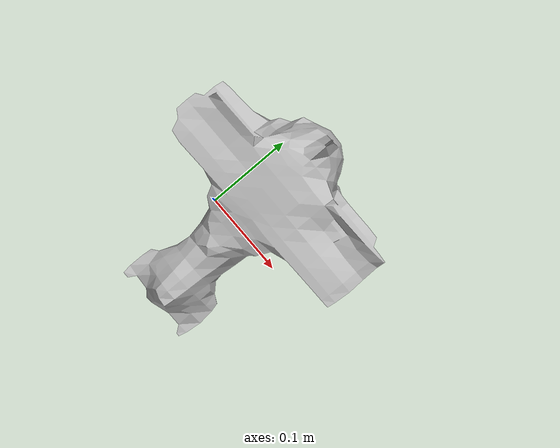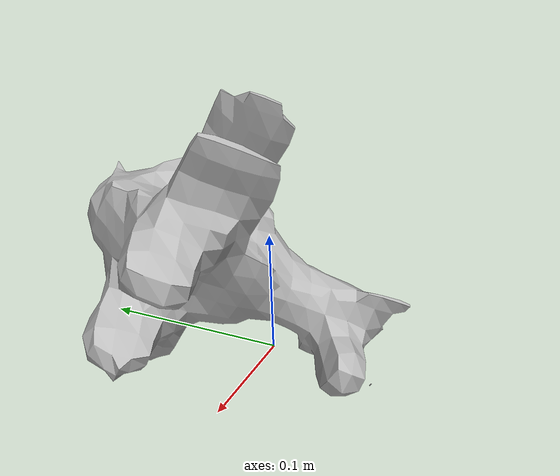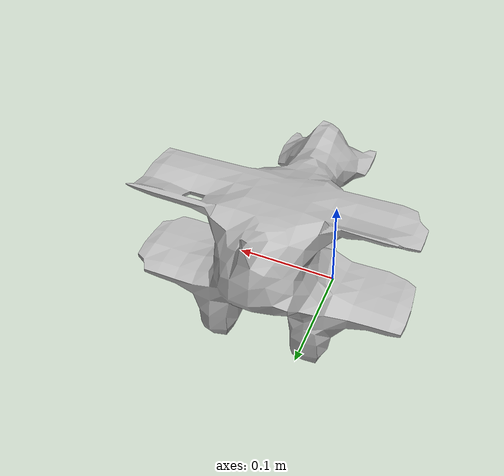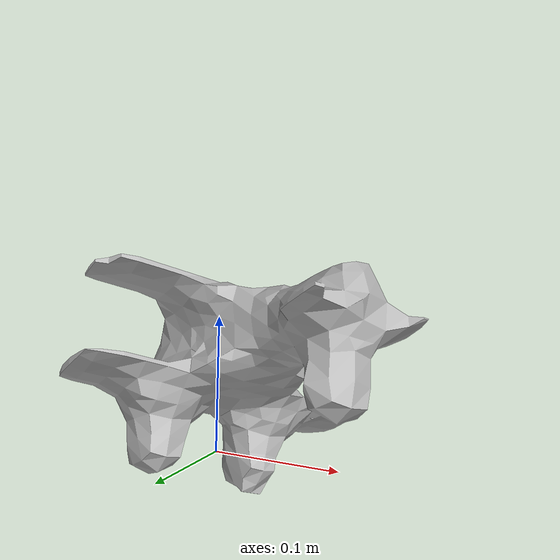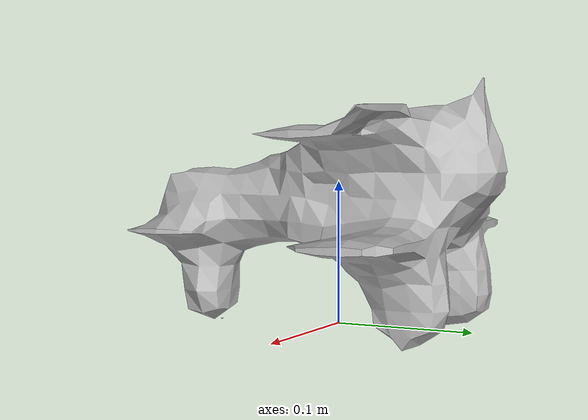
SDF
<?xml version='1.0'?>
<sdf version="1.4">
  <model name="a_toy_airplane">
    <static>false</static>
    <link name="link">
      <inertial>
        <pose>0.03572475763431454 0.030807398220545207 0.09092314374993266 0.0756101056944915 -1.4145003027848948 -1.5857219891797967</pose>
        <mass>0.0015645812091364011</mass>
        <inertia>
          <ixx>9.43995020953257e-06</ixx>
          <ixy>3.6285041313882006e-23</ixy>
          <ixz>1.0895386204604454e-22</ixz>
          <iyy>7.940826855115171e-06</iyy>
          <iyz>-9.786512231260026e-23</iyz>
          <izz>5.371234151048594e-06</izz>
        </inertia>
      </inertial>
      <collision name="collision">
        <geometry>
          <!-- Use a downsampled mesh for collisions -->
          <mesh>
            <uri>model://072-a_toy_airplane/google_16k/low_poly.obj</uri>
	        </mesh>
        </geometry>
        <surface>
      </surface>
      </collision>
      <visual name="visual">
        <geometry>
          <mesh>
            <uri>model://072-a_toy_airplane/google_16k/textured.obj</uri>
	        </mesh>
        </geometry>
        <material>
          <script>
            <uri>model://072-a_toy_airplane/a_toy_airplane.material</uri>
            <name>a_toy_airplane</name>
          </script>
        </material>
      </visual>
    </link>
  </model>
</sdf>
